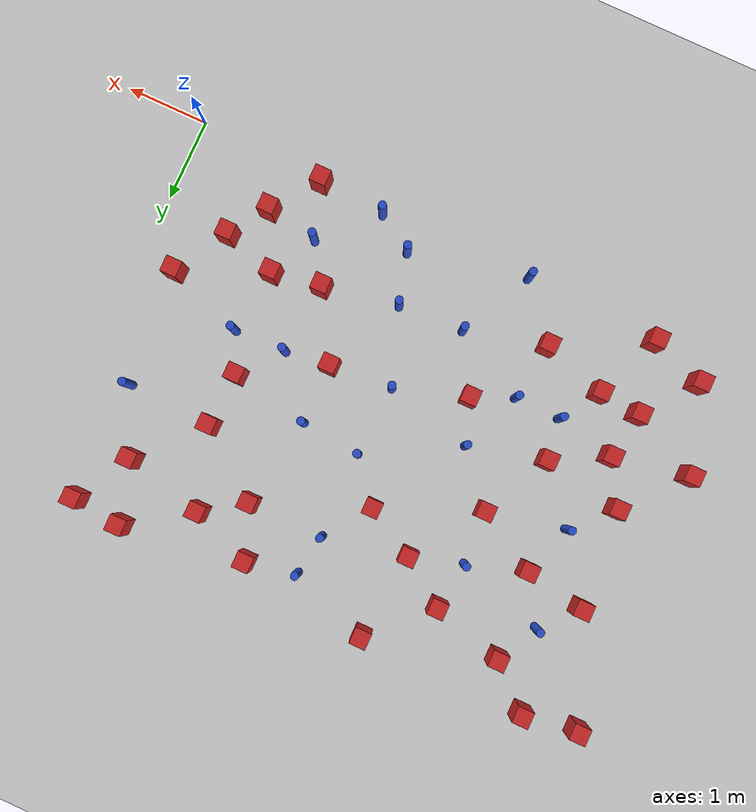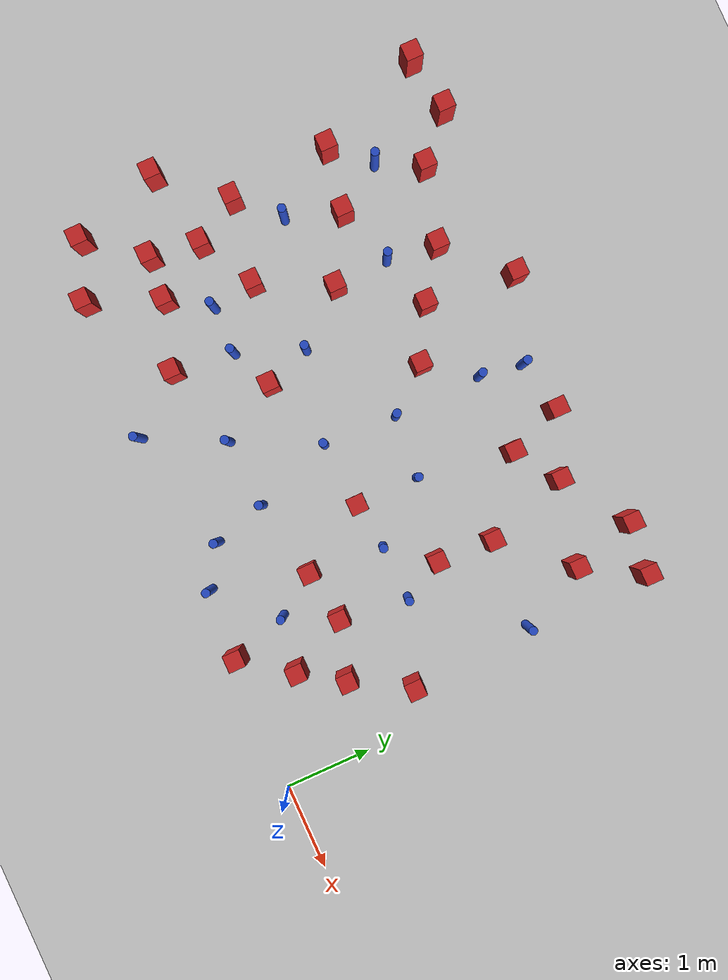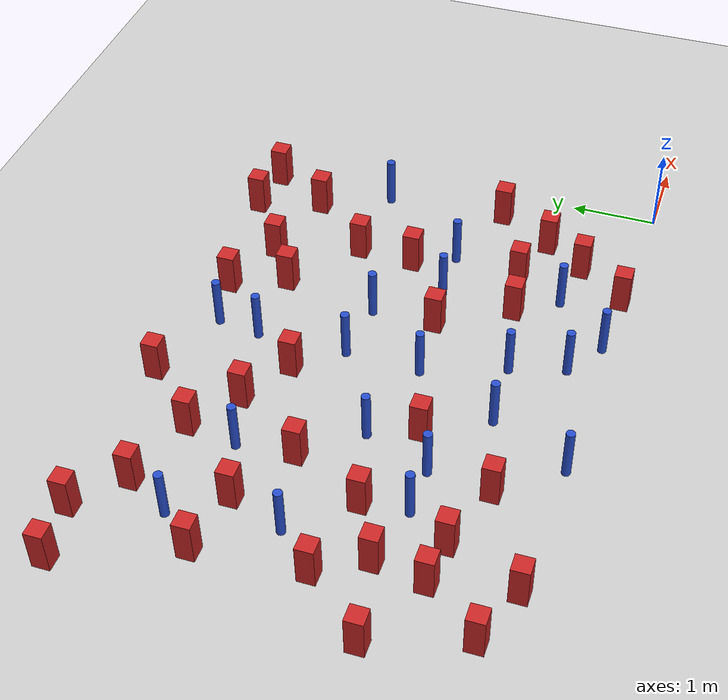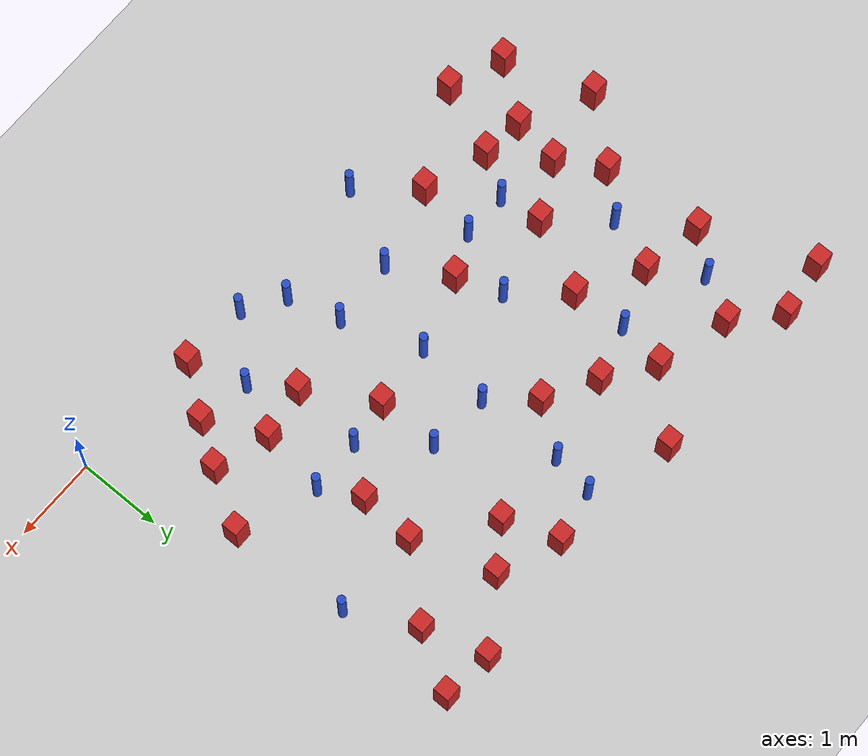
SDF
<sdf version="1.6">
 <world name="default">
  <model name="ground_plane">
   <static>1</static>
   <link name="link">
    <collision name="collision">
     <geometry><plane><normal>0 0 1</normal><size>100 100</size></plane></geometry>
     <surface><friction><ode><mu>100</mu><mu2>50</mu2></ode></friction></surface>
    </collision>
    <visual name="visual">
     <cast_shadows>0</cast_shadows>
     <geometry><plane><normal>0 0 1</normal><size>100 100</size></plane></geometry>
     <material>
      <ambient>1.0 1.0 1.0 1.0</ambient>
      <diffuse>0.8 0.8 0.8 1.0</diffuse>
      <specular>0.01 0.01 0.01 1.000000</specular>
     </material>
    </visual>
   </link>
  </model>
  <model name="pole_obstacle1">
   <static>true</static>
   <pose>-0.560717947316 3.22492922202 7.38925637345e-09 -8.47170692799e-08 1.2497676509e-08 -1.74513093016e-07</pose>
   <link name="link">
    <pose>0 0 0.3 0 -0 0</pose>
    <inertial>
     <mass>1</mass>
     <inertia><ixx>0.145833</ixx><ixy>0</ixy><ixz>0</ixz><iyy>0.145833</iyy><iyz>0</iyz><izz>0.125</izz></inertia>
    </inertial>
    <collision name="collision">
     <geometry><cylinder><radius>0.05</radius><length>.6</length></cylinder></geometry>
    </collision>
    <visual name="visual">
     <geometry><cylinder><radius>0.05</radius><length>.6</length></cylinder></geometry>
     <material>
      <script><name>Gazebo/Blue</name><uri>file://media/materials/scripts/gazebo.material</uri></script>
     </material>
    </visual>
   </link>
  </model>
  <model name="pole_obstacle2">
   <static>true</static>
   <pose>-5.3107187006 1.49005839693 7.38925637345e-09 -8.471706928e-08 1.24976765134e-08 -1.74513093015e-07</pose>
   <link name="link">
    <pose>0 0 0.3 0 -0 0</pose>
    <inertial>
     <mass>1</mass>
     <inertia><ixx>0.145833</ixx><ixy>0</ixy><ixz>0</ixz><iyy>0.145833</iyy><iyz>0</iyz><izz>0.125</izz></inertia>
    </inertial>
    <collision name="collision">
     <geometry><cylinder><radius>0.05</radius><length>.6</length></cylinder></geometry>
    </collision>
    <visual name="visual">
     <geometry><cylinder><radius>0.05</radius><length>.6</length></cylinder></geometry>
     <material>
      <script><name>Gazebo/Blue</name><uri>file://media/materials/scripts/gazebo.material</uri></script>
     </material>
    </visual>
   </link>
  </model>
  <model name="pole_obstacle6">
   <static>true</static>
   <pose>-5.92039442164 2.6374540266 7.38925637345e-09 -8.47170692798e-08 1.24976764937e-08 -1.74513093023e-07</pose>
   <link name="link">
    <pose>0 0 0.3 0 -0 0</pose>
    <inertial>
     <mass>1</mass>
     <inertia><ixx>0.145833</ixx><ixy>0</ixy><ixz>0</ixz><iyy>0.145833</iyy><iyz>0</iyz><izz>0.125</izz></inertia>
    </inertial>
    <collision name="collision">
     <geometry><cylinder><radius>0.05</radius><length>.6</length></cylinder></geometry>
    </collision>
    <visual name="visual">
     <geometry><cylinder><radius>0.05</radius><length>.6</length></cylinder></geometry>
     <material>
      <script><name>Gazebo/Blue</name><uri>file://media/materials/scripts/gazebo.material</uri></script>
     </material>
    </visual>
   </link>
  </model>
  <model name="square_post_obstacle11">
   <static>true</static>
   <pose>-2.60580880805 2.04460660842 1.91545236811e-07 -7.35059704564e-06 1.12565212e-07 2.39332434364e-05</pose>
   <link name="link">
    <pose>0 0 0.25 0 -0 0</pose>
    <inertial>
     <mass>100</mass>
     <inertia>
      <ixx>0.166667</ixx>
      <ixy>0</ixy>
      <ixz>0</ixz>
      <iyy>0.166667</iyy>
      <iyz>0</iyz>
      <izz>0.166667</izz>
     </inertia>
    </inertial>
    <collision name="collision"><geometry><box><size>.2 .2 .5</size></box></geometry></collision>
    <visual name="visual">
     <geometry><box><size>.2 .2 .5</size></box></geometry>
     <material>
      <script><name>Gazebo/Red</name><uri>file://media/materials/scripts/gazebo.material</uri></script>
     </material>
    </visual>
   </link>
  </model>
  <model name="square_post_obstacle12">
   <static>true</static>
   <pose>-0.953486799942 3.99989411962 1.91545236811e-07 -7.35059704564e-06 1.12565212e-07 2.39332434364e-05</pose>
   <link name="link">
    <pose>0 0 0.25 0 -0 0</pose>
    <inertial>
     <mass>100</mass>
     <inertia>
      <ixx>0.166667</ixx>
      <ixy>0</ixy>
      <ixz>0</ixz>
      <iyy>0.166667</iyy>
      <iyz>0</iyz>
      <izz>0.166667</izz>
     </inertia>
    </inertial>
    <collision name="collision"><geometry><box><size>.2 .2 .5</size></box></geometry></collision>
    <visual name="visual">
     <geometry><box><size>.2 .2 .5</size></box></geometry>
     <material>
      <script><name>Gazebo/Red</name><uri>file://media/materials/scripts/gazebo.material</uri></script>
     </material>
    </visual>
   </link>
  </model>
  <model name="square_post_obstacle17">
   <static>true</static>
   <pose>-3.75734223442 3.34890527654 1.91545236811e-07 -7.35059704564e-06 1.12565212e-07 2.39332434364e-05</pose>
   <link name="link">
    <pose>0 0 0.25 0 -0 0</pose>
    <inertial>
     <mass>100</mass>
     <inertia>
      <ixx>0.166667</ixx>
      <ixy>0</ixy>
      <ixz>0</ixz>
      <iyy>0.166667</iyy>
      <iyz>0</iyz>
      <izz>0.166667</izz>
     </inertia>
    </inertial>
    <collision name="collision"><geometry><box><size>.2 .2 .5</size></box></geometry></collision>
    <visual name="visual">
     <geometry><box><size>.2 .2 .5</size></box></geometry>
     <material>
      <script><name>Gazebo/Red</name><uri>file://media/materials/scripts/gazebo.material</uri></script>
     </material>
    </visual>
   </link>
  </model>
  <model name="square_post_obstacle19">
   <static>true</static>
   <pose>-1.17114769434 4.74576161731 1.91545236811e-07 -7.35059704564e-06 1.12565212e-07 2.39332434364e-05</pose>
   <link name="link">
    <pose>0 0 0.25 0 -0 0</pose>
    <inertial>
     <mass>100</mass>
     <inertia>
      <ixx>0.166667</ixx>
      <ixy>0</ixy>
      <ixz>0</ixz>
      <iyy>0.166667</iyy>
      <iyz>0</iyz>
      <izz>0.166667</izz>
     </inertia>
    </inertial>
    <collision name="collision"><geometry><box><size>.2 .2 .5</size></box></geometry></collision>
    <visual name="visual">
     <geometry><box><size>.2 .2 .5</size></box></geometry>
     <material>
      <script><name>Gazebo/Red</name><uri>file://media/materials/scripts/gazebo.material</uri></script>
     </material>
    </visual>
   </link>
  </model>
  <model name="square_post_obstacle20">
   <static>true</static>
   <pose>-2.42705209212 3.88906436774 1.91545236811e-07 -7.35059704564e-06 1.12565212e-07 2.39332434364e-05</pose>
   <link name="link">
    <pose>0 0 0.25 0 -0 0</pose>
    <inertial>
     <mass>100</mass>
     <inertia>
      <ixx>0.166667</ixx>
      <ixy>0</ixy>
      <ixz>0</ixz>
      <iyy>0.166667</iyy>
      <iyz>0</iyz>
      <izz>0.166667</izz>
     </inertia>
    </inertial>
    <collision name="collision"><geometry><box><size>.2 .2 .5</size></box></geometry></collision>
    <visual name="visual">
     <geometry><box><size>.2 .2 .5</size></box></geometry>
     <material>
      <script><name>Gazebo/Red</name><uri>file://media/materials/scripts/gazebo.material</uri></script>
     </material>
    </visual>
   </link>
  </model>
  <model name="pole_obstacle12">
   <static>true</static>
   <pose>-4.7468510527 1.48127857913 7.38925637345e-09 -8.471706928e-08 1.24976765134e-08 -1.74513093015e-07</pose>
   <link name="link">
    <pose>0 0 0.3 0 -0 0</pose>
    <inertial>
     <mass>1</mass>
     <inertia><ixx>0.145833</ixx><ixy>0</ixy><ixz>0</ixz><iyy>0.145833</iyy><iyz>0</iyz><izz>0.125</izz></inertia>
    </inertial>
    <collision name="collision">
     <geometry><cylinder><radius>0.05</radius><length>.6</length></cylinder></geometry>
    </collision>
    <visual name="visual">
     <geometry><cylinder><radius>0.05</radius><length>.6</length></cylinder></geometry>
     <material>
      <script><name>Gazebo/Blue</name><uri>file://media/materials/scripts/gazebo.material</uri></script>
     </material>
    </visual>
   </link>
  </model>
  <model name="pole_obstacle17">
   <static>true</static>
   <pose>-4.44216015125 2.24138379186 7.38925637345e-09 -8.47170692798e-08 1.24976764937e-08 -1.74513093023e-07</pose>
   <link name="link">
    <pose>0 0 0.3 0 -0 0</pose>
    <inertial>
     <mass>1</mass>
     <inertia><ixx>0.145833</ixx><ixy>0</ixy><ixz>0</ixz><iyy>0.145833</iyy><iyz>0</iyz><izz>0.125</izz></inertia>
    </inertial>
    <collision name="collision">
     <geometry><cylinder><radius>0.05</radius><length>.6</length></cylinder></geometry>
    </collision>
    <visual name="visual">
     <geometry><cylinder><radius>0.05</radius><length>.6</length></cylinder></geometry>
     <material>
      <script><name>Gazebo/Blue</name><uri>file://media/materials/scripts/gazebo.material</uri></script>
     </material>
    </visual>
   </link>
  </model>
  <model name="square_post_obstacle25">
   <static>true</static>
   <pose>-4.95838039901 2.84136335254 1.91545236811e-07 -7.35059704564e-06 1.12565212e-07 2.39332434364e-05</pose>
   <link name="link">
    <pose>0 0 0.25 0 -0 0</pose>
    <inertial>
     <mass>100</mass>
     <inertia>
      <ixx>0.166667</ixx>
      <ixy>0</ixy>
      <ixz>0</ixz>
      <iyy>0.166667</iyy>
      <iyz>0</iyz>
      <izz>0.166667</izz>
     </inertia>
    </inertial>
    <collision name="collision"><geometry><box><size>.2 .2 .5</size></box></geometry></collision>
    <visual name="visual">
     <geometry><box><size>.2 .2 .5</size></box></geometry>
     <material>
      <script><name>Gazebo/Red</name><uri>file://media/materials/scripts/gazebo.material</uri></script>
     </material>
    </visual>
   </link>
  </model>
  <model name="square_post_obstacle33">
   <static>true</static>
   <pose>-6.61525538989 0.4385133472 1.91545236811e-07 -7.35059704564e-06 1.12565212e-07 2.39332434364e-05</pose>
   <link name="link">
    <pose>0 0 0.25 0 -0 0</pose>
    <inertial>
     <mass>100</mass>
     <inertia>
      <ixx>0.166667</ixx>
      <ixy>0</ixy>
      <ixz>0</ixz>
      <iyy>0.166667</iyy>
      <iyz>0</iyz>
      <izz>0.166667</izz>
     </inertia>
    </inertial>
    <collision name="collision"><geometry><box><size>.2 .2 .5</size></box></geometry></collision>
    <visual name="visual">
     <geometry><box><size>.2 .2 .5</size></box></geometry>
     <material>
      <script><name>Gazebo/Red</name><uri>file://media/materials/scripts/gazebo.material</uri></script>
     </material>
    </visual>
   </link>
  </model>
  <model name="pole_obstacle30">
   <static>true</static>
   <pose>-3.33835124246 2.856577763 7.38925637345e-09 -8.471706928e-08 1.24976765098e-08 -1.74513093016e-07</pose>
   <link name="link">
    <pose>0 0 0.3 0 -0 0</pose>
    <inertial>
     <mass>1</mass>
     <inertia><ixx>0.145833</ixx><ixy>0</ixy><ixz>0</ixz><iyy>0.145833</iyy><iyz>0</iyz><izz>0.125</izz></inertia>
    </inertial>
    <collision name="collision">
     <geometry><cylinder><radius>0.05</radius><length>.6</length></cylinder></geometry>
    </collision>
    <visual name="visual">
     <geometry><cylinder><radius>0.05</radius><length>.6</length></cylinder></geometry>
     <material>
      <script><name>Gazebo/Blue</name><uri>file://media/materials/scripts/gazebo.material</uri></script>
     </material>
    </visual>
   </link>
  </model>
  <model name="square_post_obstacle35">
   <static>true</static>
   <pose>-2.13119340467 1.23984928694 1.91545236811e-07 -7.35059704564e-06 1.12565212e-07 2.39332434364e-05</pose>
   <link name="link">
    <pose>0 0 0.25 0 -0 0</pose>
    <inertial>
     <mass>100</mass>
     <inertia>
      <ixx>0.166667</ixx>
      <ixy>0</ixy>
      <ixz>0</ixz>
      <iyy>0.166667</iyy>
      <iyz>0</iyz>
      <izz>0.166667</izz>
     </inertia>
    </inertial>
    <collision name="collision"><geometry><box><size>.2 .2 .5</size></box></geometry></collision>
    <visual name="visual">
     <geometry><box><size>.2 .2 .5</size></box></geometry>
     <material>
      <script><name>Gazebo/Red</name><uri>file://media/materials/scripts/gazebo.material</uri></script>
     </material>
    </visual>
   </link>
  </model>
  <model name="square_post_obstacle38">
   <static>true</static>
   <pose>-1.65792401284 2.59913225852 1.91545236811e-07 -7.35059704564e-06 1.12565212e-07 2.39332434364e-05</pose>
   <link name="link">
    <pose>0 0 0.25 0 -0 0</pose>
    <inertial>
     <mass>100</mass>
     <inertia>
      <ixx>0.166667</ixx>
      <ixy>0</ixy>
      <ixz>0</ixz>
      <iyy>0.166667</iyy>
      <iyz>0</iyz>
      <izz>0.166667</izz>
     </inertia>
    </inertial>
    <collision name="collision"><geometry><box><size>.2 .2 .5</size></box></geometry></collision>
    <visual name="visual">
     <geometry><box><size>.2 .2 .5</size></box></geometry>
     <material>
      <script><name>Gazebo/Red</name><uri>file://media/materials/scripts/gazebo.material</uri></script>
     </material>
    </visual>
   </link>
  </model>
  <model name="square_post_obstacle41">
   <static>true</static>
   <pose>-6.02653967946 1.65194200317 1.91545236811e-07 -7.35059704564e-06 1.12565212e-07 2.39332434364e-05</pose>
   <link name="link">
    <pose>0 0 0.25 0 -0 0</pose>
    <inertial>
     <mass>100</mass>
     <inertia>
      <ixx>0.166667</ixx>
      <ixy>0</ixy>
      <ixz>0</ixz>
      <iyy>0.166667</iyy>
      <iyz>0</iyz>
      <izz>0.166667</izz>
     </inertia>
    </inertial>
    <collision name="collision"><geometry><box><size>.2 .2 .5</size></box></geometry></collision>
    <visual name="visual">
     <geometry><box><size>.2 .2 .5</size></box></geometry>
     <material>
      <script><name>Gazebo/Red</name><uri>file://media/materials/scripts/gazebo.material</uri></script>
     </material>
    </visual>
   </link>
  </model>
  <model name="square_post_obstacle46">
   <static>true</static>
   <pose>-6.12232445304 1.06817409139 1.91545236811e-07 -7.35059704564e-06 1.12565212e-07 2.39332434364e-05</pose>
   <link name="link">
    <pose>0 0 0.25 0 -0 0</pose>
    <inertial>
     <mass>100</mass>
     <inertia>
      <ixx>0.166667</ixx>
      <ixy>0</ixy>
      <ixz>0</ixz>
      <iyy>0.166667</iyy>
      <iyz>0</iyz>
      <izz>0.166667</izz>
     </inertia>
    </inertial>
    <collision name="collision"><geometry><box><size>.2 .2 .5</size></box></geometry></collision>
    <visual name="visual">
     <geometry><box><size>.2 .2 .5</size></box></geometry>
     <material>
      <script><name>Gazebo/Red</name><uri>file://media/materials/scripts/gazebo.material</uri></script>
     </material>
    </visual>
   </link>
  </model>
  <model name="square_post_obstacle53">
   <static>true</static>
   <pose>-4.25133898155 1.70456583758 1.91545236811e-07 -7.35059704564e-06 1.12565212e-07 2.39332434364e-05</pose>
   <link name="link">
    <pose>0 0 0.25 0 -0 0</pose>
    <inertial>
     <mass>100</mass>
     <inertia>
      <ixx>0.166667</ixx>
      <ixy>0</ixy>
      <ixz>0</ixz>
      <iyy>0.166667</iyy>
      <iyz>0</iyz>
      <izz>0.166667</izz>
     </inertia>
    </inertial>
    <collision name="collision"><geometry><box><size>.2 .2 .5</size></box></geometry></collision>
    <visual name="visual">
     <geometry><box><size>.2 .2 .5</size></box></geometry>
     <material>
      <script><name>Gazebo/Red</name><uri>file://media/materials/scripts/gazebo.material</uri></script>
     </material>
    </visual>
   </link>
  </model>
  <model name="square_post_obstacle58">
   <static>true</static>
   <pose>-1.62002600436 3.26491859349 1.91545236811e-07 -7.35059704564e-06 1.12565212e-07 2.39332434364e-05</pose>
   <link name="link">
    <pose>0 0 0.25 0 -0 0</pose>
    <inertial>
     <mass>100</mass>
     <inertia>
      <ixx>0.166667</ixx>
      <ixy>0</ixy>
      <ixz>0</ixz>
      <iyy>0.166667</iyy>
      <iyz>0</iyz>
      <izz>0.166667</izz>
     </inertia>
    </inertial>
    <collision name="collision"><geometry><box><size>.2 .2 .5</size></box></geometry></collision>
    <visual name="visual">
     <geometry><box><size>.2 .2 .5</size></box></geometry>
     <material>
      <script><name>Gazebo/Red</name><uri>file://media/materials/scripts/gazebo.material</uri></script>
     </material>
    </visual>
   </link>
  </model>
  <model name="pole_obstacle57">
   <static>true</static>
   <pose>-4.30485414501 0.119792069853 7.38925637345e-09 -8.47170692799e-08 1.24976765098e-08 -1.74513093016e-07</pose>
   <link name="link">
    <pose>0 0 0.3 0 -0 0</pose>
    <inertial>
     <mass>1</mass>
     <inertia><ixx>0.145833</ixx><ixy>0</ixy><ixz>0</ixz><iyy>0.145833</iyy><iyz>0</iyz><izz>0.125</izz></inertia>
    </inertial>
    <collision name="collision">
     <geometry><cylinder><radius>0.05</radius><length>.6</length></cylinder></geometry>
    </collision>
    <visual name="visual">
     <geometry><cylinder><radius>0.05</radius><length>.6</length></cylinder></geometry>
     <material>
      <script><name>Gazebo/Blue</name><uri>file://media/materials/scripts/gazebo.material</uri></script>
     </material>
    </visual>
   </link>
  </model>
  <model name="square_post_obstacle61">
   <static>true</static>
   <pose>-4.83421276216 0.770627071369 1.91545236811e-07 -7.35059704564e-06 1.12565212e-07 2.39332434364e-05</pose>
   <link name="link">
    <pose>0 0 0.25 0 -0 0</pose>
    <inertial>
     <mass>100</mass>
     <inertia>
      <ixx>0.166667</ixx>
      <ixy>0</ixy>
      <ixz>0</ixz>
      <iyy>0.166667</iyy>
      <iyz>0</iyz>
      <izz>0.166667</izz>
     </inertia>
    </inertial>
    <collision name="collision"><geometry><box><size>.2 .2 .5</size></box></geometry></collision>
    <visual name="visual">
     <geometry><box><size>.2 .2 .5</size></box></geometry>
     <material>
      <script><name>Gazebo/Red</name><uri>file://media/materials/scripts/gazebo.material</uri></script>
     </material>
    </visual>
   </link>
  </model>
  <model name="square_post_obstacle67">
   <static>true</static>
   <pose>-5.69200615293 3.26198052427 1.91545236811e-07 -7.35059704564e-06 1.12565212e-07 2.39332434364e-05</pose>
   <link name="link">
    <pose>0 0 0.25 0 -0 0</pose>
    <inertial>
     <mass>100</mass>
     <inertia>
      <ixx>0.166667</ixx>
      <ixy>0</ixy>
      <ixz>0</ixz>
      <iyy>0.166667</iyy>
      <iyz>0</iyz>
      <izz>0.166667</izz>
     </inertia>
    </inertial>
    <collision name="collision"><geometry><box><size>.2 .2 .5</size></box></geometry></collision>
    <visual name="visual">
     <geometry><box><size>.2 .2 .5</size></box></geometry>
     <material>
      <script><name>Gazebo/Red</name><uri>file://media/materials/scripts/gazebo.material</uri></script>
     </material>
    </visual>
   </link>
  </model>
  <model name="pole_obstacle66">
   <static>true</static>
   <pose>-3.04685775689 1.06043124986 7.38925637345e-09 -8.471706928e-08 1.24976765152e-08 -1.74513093012e-07</pose>
   <link name="link">
    <pose>0 0 0.3 0 -0 0</pose>
    <inertial>
     <mass>1</mass>
     <inertia><ixx>0.145833</ixx><ixy>0</ixy><ixz>0</ixz><iyy>0.145833</iyy><iyz>0</iyz><izz>0.125</izz></inertia>
    </inertial>
    <collision name="collision">
     <geometry><cylinder><radius>0.05</radius><length>.6</length></cylinder></geometry>
    </collision>
    <visual name="visual">
     <geometry><cylinder><radius>0.05</radius><length>.6</length></cylinder></geometry>
     <material>
      <script><name>Gazebo/Blue</name><uri>file://media/materials/scripts/gazebo.material</uri></script>
     </material>
    </visual>
   </link>
  </model>
  <model name="square_post_obstacle70">
   <static>true</static>
   <pose>-6.4316079445 3.40149915815 1.91545236811e-07 -7.35059704564e-06 1.12565212e-07 2.39332434364e-05</pose>
   <link name="link">
    <pose>0 0 0.25 0 -0 0</pose>
    <inertial>
     <mass>100</mass>
     <inertia>
      <ixx>0.166667</ixx>
      <ixy>0</ixy>
      <ixz>0</ixz>
      <iyy>0.166667</iyy>
      <iyz>0</iyz>
      <izz>0.166667</izz>
     </inertia>
    </inertial>
    <collision name="collision"><geometry><box><size>.2 .2 .5</size></box></geometry></collision>
    <visual name="visual">
     <geometry><box><size>.2 .2 .5</size></box></geometry>
     <material>
      <script><name>Gazebo/Red</name><uri>file://media/materials/scripts/gazebo.material</uri></script>
     </material>
    </visual>
   </link>
  </model>
  <model name="pole_obstacle85">
   <static>true</static>
   <pose>-3.85383028565 1.01690058531 7.38925637345e-09 -8.47170692793e-08 1.2497676438e-08 -1.74513093043e-07</pose>
   <link name="link">
    <pose>0 0 0.3 0 -0 0</pose>
    <inertial>
     <mass>1</mass>
     <inertia><ixx>0.145833</ixx><ixy>0</ixy><ixz>0</ixz><iyy>0.145833</iyy><iyz>0</iyz><izz>0.125</izz></inertia>
    </inertial>
    <collision name="collision">
     <geometry><cylinder><radius>0.05</radius><length>.6</length></cylinder></geometry>
    </collision>
    <visual name="visual">
     <geometry><cylinder><radius>0.05</radius><length>.6</length></cylinder></geometry>
     <material>
      <script><name>Gazebo/Blue</name><uri>file://media/materials/scripts/gazebo.material</uri></script>
     </material>
    </visual>
   </link>
  </model>
  <model name="pole_obstacle92">
   <static>true</static>
   <pose>-2.05316402087 2.11165233086 7.38925637345e-09 -8.47170692798e-08 1.24976764939e-08 -1.74513093025e-07</pose>
   <link name="link">
    <pose>0 0 0.3 0 -0 0</pose>
    <inertial>
     <mass>1</mass>
     <inertia><ixx>0.145833</ixx><ixy>0</ixy><ixz>0</ixz><iyy>0.145833</iyy><iyz>0</iyz><izz>0.125</izz></inertia>
    </inertial>
    <collision name="collision">
     <geometry><cylinder><radius>0.05</radius><length>.6</length></cylinder></geometry>
    </collision>
    <visual name="visual">
     <geometry><cylinder><radius>0.05</radius><length>.6</length></cylinder></geometry>
     <material>
      <script><name>Gazebo/Blue</name><uri>file://media/materials/scripts/gazebo.material</uri></script>
     </material>
    </visual>
   </link>
  </model>
  <model name="pole_obstacle93">
   <static>true</static>
   <pose>-1.80808214609 0.763237005884 7.38925637345e-09 -8.47170692799e-08 1.24976765075e-08 -1.74513093017e-07</pose>
   <link name="link">
    <pose>0 0 0.3 0 -0 0</pose>
    <inertial>
     <mass>1</mass>
     <inertia><ixx>0.145833</ixx><ixy>0</ixy><ixz>0</ixz><iyy>0.145833</iyy><iyz>0</iyz><izz>0.125</izz></inertia>
    </inertial>
    <collision name="collision">
     <geometry><cylinder><radius>0.05</radius><length>.6</length></cylinder></geometry>
    </collision>
    <visual name="visual">
     <geometry><cylinder><radius>0.05</radius><length>.6</length></cylinder></geometry>
     <material>
      <script><name>Gazebo/Blue</name><uri>file://media/materials/scripts/gazebo.material</uri></script>
     </material>
    </visual>
   </link>
  </model>
  <model name="pole_obstacle94">
   <static>true</static>
   <pose>-2.41207570671 0.141591664739 7.38925637345e-09 -8.471706928e-08 1.2497676517e-08 -1.74513093012e-07</pose>
   <link name="link">
    <pose>0 0 0.3 0 -0 0</pose>
    <inertial>
     <mass>1</mass>
     <inertia><ixx>0.145833</ixx><ixy>0</ixy><ixz>0</ixz><iyy>0.145833</iyy><iyz>0</iyz><izz>0.125</izz></inertia>
    </inertial>
    <collision name="collision">
     <geometry><cylinder><radius>0.05</radius><length>.6</length></cylinder></geometry>
    </collision>
    <visual name="visual">
     <geometry><cylinder><radius>0.05</radius><length>.6</length></cylinder></geometry>
     <material>
      <script><name>Gazebo/Blue</name><uri>file://media/materials/scripts/gazebo.material</uri></script>
     </material>
    </visual>
   </link>
  </model>
  <model name="square_post_obstacle85">
   <static>true</static>
   <pose>-0.48052606813 1.78521412935 1.91545236811e-07 -7.35059704564e-06 1.12565212e-07 2.39332434364e-05</pose>
   <link name="link">
    <pose>0 0 0.25 0 -0 0</pose>
    <inertial>
     <mass>100</mass>
     <inertia>
      <ixx>0.166667</ixx>
      <ixy>0</ixy>
      <ixz>0</ixz>
      <iyy>0.166667</iyy>
      <iyz>0</iyz>
      <izz>0.166667</izz>
     </inertia>
    </inertial>
    <collision name="collision"><geometry><box><size>.2 .2 .5</size></box></geometry></collision>
    <visual name="visual">
     <geometry><box><size>.2 .2 .5</size></box></geometry>
     <material>
      <script><name>Gazebo/Red</name><uri>file://media/materials/scripts/gazebo.material</uri></script>
     </material>
    </visual>
   </link>
  </model>
  <model name="square_post_obstacle86">
   <static>true</static>
   <pose>-2.67025493579 4.52228234512 1.91545236811e-07 -7.35059704564e-06 1.12565212e-07 2.39332434364e-05</pose>
   <link name="link">
    <pose>0 0 0.25 0 -0 0</pose>
    <inertial>
     <mass>100</mass>
     <inertia>
      <ixx>0.166667</ixx>
      <ixy>0</ixy>
      <ixz>0</ixz>
      <iyy>0.166667</iyy>
      <iyz>0</iyz>
      <izz>0.166667</izz>
     </inertia>
    </inertial>
    <collision name="collision"><geometry><box><size>.2 .2 .5</size></box></geometry></collision>
    <visual name="visual">
     <geometry><box><size>.2 .2 .5</size></box></geometry>
     <material>
      <script><name>Gazebo/Red</name><uri>file://media/materials/scripts/gazebo.material</uri></script>
     </material>
    </visual>
   </link>
  </model>
  <model name="pole_obstacle99">
   <static>true</static>
   <pose>-2.60471388288 2.78612400726 7.38925637345e-09 -8.47170692798e-08 1.24976764939e-08 -1.74513093025e-07</pose>
   <link name="link">
    <pose>0 0 0.3 0 -0 0</pose>
    <inertial>
     <mass>1</mass>
     <inertia><ixx>0.145833</ixx><ixy>0</ixy><ixz>0</ixz><iyy>0.145833</iyy><iyz>0</iyz><izz>0.125</izz></inertia>
    </inertial>
    <collision name="collision">
     <geometry><cylinder><radius>0.05</radius><length>.6</length></cylinder></geometry>
    </collision>
    <visual name="visual">
     <geometry><cylinder><radius>0.05</radius><length>.6</length></cylinder></geometry>
     <material>
      <script><name>Gazebo/Blue</name><uri>file://media/materials/scripts/gazebo.material</uri></script>
     </material>
    </visual>
   </link>
  </model>
  <model name="square_post_obstacle91">
   <static>true</static>
   <pose>-5.78439930525 4.32473814824 1.91545236811e-07 -7.35059704564e-06 1.12565212e-07 2.39332434364e-05</pose>
   <link name="link">
    <pose>0 0 0.25 0 -0 0</pose>
    <inertial>
     <mass>100</mass>
     <inertia>
      <ixx>0.166667</ixx>
      <ixy>0</ixy>
      <ixz>0</ixz>
      <iyy>0.166667</iyy>
      <iyz>0</iyz>
      <izz>0.166667</izz>
     </inertia>
    </inertial>
    <collision name="collision"><geometry><box><size>.2 .2 .5</size></box></geometry></collision>
    <visual name="visual">
     <geometry><box><size>.2 .2 .5</size></box></geometry>
     <material>
      <script><name>Gazebo/Red</name><uri>file://media/materials/scripts/gazebo.material</uri></script>
     </material>
    </visual>
   </link>
  </model>
  <model name="square_post_obstacle99">
   <static>true</static>
   <pose>-5.9533000497 0.192571677126 1.91545236811e-07 -7.35059704564e-06 1.12565212e-07 2.39332434364e-05</pose>
   <link name="link">
    <pose>0 0 0.25 0 -0 0</pose>
    <inertial>
     <mass>100</mass>
     <inertia>
      <ixx>0.166667</ixx>
      <ixy>0</ixy>
      <ixz>0</ixz>
      <iyy>0.166667</iyy>
      <iyz>0</iyz>
      <izz>0.166667</izz>
     </inertia>
    </inertial>
    <collision name="collision"><geometry><box><size>.2 .2 .5</size></box></geometry></collision>
    <visual name="visual">
     <geometry><box><size>.2 .2 .5</size></box></geometry>
     <material>
      <script><name>Gazebo/Red</name><uri>file://media/materials/scripts/gazebo.material</uri></script>
     </material>
    </visual>
   </link>
  </model>
  <model name="pole_obstacle115">
   <static>true</static>
   <pose>-5.00061995362 3.50222551562 7.38925637345e-09 -8.47170692798e-08 1.24976764937e-08 -1.74513093023e-07</pose>
   <link name="link">
    <pose>0 0 0.3 0 -0 0</pose>
    <inertial>
     <mass>1</mass>
     <inertia><ixx>0.145833</ixx><ixy>0</ixy><ixz>0</ixz><iyy>0.145833</iyy><iyz>0</iyz><izz>0.125</izz></inertia>
    </inertial>
    <collision name="collision">
     <geometry><cylinder><radius>0.05</radius><length>.6</length></cylinder></geometry>
    </collision>
    <visual name="visual">
     <geometry><cylinder><radius>0.05</radius><length>.6</length></cylinder></geometry>
     <material>
      <script><name>Gazebo/Blue</name><uri>file://media/materials/scripts/gazebo.material</uri></script>
     </material>
    </visual>
   </link>
  </model>
  <model name="pole_obstacle129">
   <static>true</static>
   <pose>-3.377908276 1.985124934 7.38925637345e-09 -8.47170692793e-08 1.24976764428e-08 -1.74513093041e-07</pose>
   <link name="link">
    <pose>0 0 0.3 0 -0 0</pose>
    <inertial>
     <mass>1</mass>
     <inertia><ixx>0.145833</ixx><ixy>0</ixy><ixz>0</ixz><iyy>0.145833</iyy><iyz>0</iyz><izz>0.125</izz></inertia>
    </inertial>
    <collision name="collision">
     <geometry><cylinder><radius>0.05</radius><length>.6</length></cylinder></geometry>
    </collision>
    <visual name="visual">
     <geometry><cylinder><radius>0.05</radius><length>.6</length></cylinder></geometry>
     <material>
      <script><name>Gazebo/Blue</name><uri>file://media/materials/scripts/gazebo.material</uri></script>
     </material>
    </visual>
   </link>
  </model>
  <model name="square_post_obstacle119">
   <static>true</static>
   <pose>-1.59816661595 0.0983796874942 1.91545236811e-07 -7.35059704564e-06 1.12565212e-07 2.39332434364e-05</pose>
   <link name="link">
    <pose>0 0 0.25 0 -0 0</pose>
    <inertial>
     <mass>100</mass>
     <inertia>
      <ixx>0.166667</ixx>
      <ixy>0</ixy>
      <ixz>0</ixz>
      <iyy>0.166667</iyy>
      <iyz>0</iyz>
      <izz>0.166667</izz>
     </inertia>
    </inertial>
    <collision name="collision"><geometry><box><size>.2 .2 .5</size></box></geometry></collision>
    <visual name="visual">
     <geometry><box><size>.2 .2 .5</size></box></geometry>
     <material>
      <script><name>Gazebo/Red</name><uri>file://media/materials/scripts/gazebo.material</uri></script>
     </material>
    </visual>
   </link>
  </model>
  <model name="square_post_obstacle125">
   <static>true</static>
   <pose>-4.91396663422 4.0793611735 1.91545236811e-07 -7.35059704564e-06 1.12565212e-07 2.39332434364e-05</pose>
   <link name="link">
    <pose>0 0 0.25 0 -0 0</pose>
    <inertial>
     <mass>100</mass>
     <inertia>
      <ixx>0.166667</ixx>
      <ixy>0</ixy>
      <ixz>0</ixz>
      <iyy>0.166667</iyy>
      <iyz>0</iyz>
      <izz>0.166667</izz>
     </inertia>
    </inertial>
    <collision name="collision"><geometry><box><size>.2 .2 .5</size></box></geometry></collision>
    <visual name="visual">
     <geometry><box><size>.2 .2 .5</size></box></geometry>
     <material>
      <script><name>Gazebo/Red</name><uri>file://media/materials/scripts/gazebo.material</uri></script>
     </material>
    </visual>
   </link>
  </model>
  <model name="square_post_obstacle129">
   <static>true</static>
   <pose>-1.93059639698 4.23081095013 1.91545236811e-07 -7.35059704564e-06 1.12565212e-07 2.39332434364e-05</pose>
   <link name="link">
    <pose>0 0 0.25 0 -0 0</pose>
    <inertial>
     <mass>100</mass>
     <inertia>
      <ixx>0.166667</ixx>
      <ixy>0</ixy>
      <ixz>0</ixz>
      <iyy>0.166667</iyy>
      <iyz>0</iyz>
      <izz>0.166667</izz>
     </inertia>
    </inertial>
    <collision name="collision"><geometry><box><size>.2 .2 .5</size></box></geometry></collision>
    <visual name="visual">
     <geometry><box><size>.2 .2 .5</size></box></geometry>
     <material>
      <script><name>Gazebo/Red</name><uri>file://media/materials/scripts/gazebo.material</uri></script>
     </material>
    </visual>
   </link>
  </model>
  <model name="square_post_obstacle130">
   <static>true</static>
   <pose>-5.6103822212 1.01912202545 1.91545236811e-07 -7.35059704564e-06 1.12565212e-07 2.39332434364e-05</pose>
   <link name="link">
    <pose>0 0 0.25 0 -0 0</pose>
    <inertial>
     <mass>100</mass>
     <inertia>
      <ixx>0.166667</ixx>
      <ixy>0</ixy>
      <ixz>0</ixz>
      <iyy>0.166667</iyy>
      <iyz>0</iyz>
      <izz>0.166667</izz>
     </inertia>
    </inertial>
    <collision name="collision"><geometry><box><size>.2 .2 .5</size></box></geometry></collision>
    <visual name="visual">
     <geometry><box><size>.2 .2 .5</size></box></geometry>
     <material>
      <script><name>Gazebo/Red</name><uri>file://media/materials/scripts/gazebo.material</uri></script>
     </material>
    </visual>
   </link>
  </model>
  <model name="square_post_obstacle133">
   <static>true</static>
   <pose>-1.5246314995 1.33497562258 1.91545236811e-07 -7.35059704564e-06 1.12565212e-07 2.39332434364e-05</pose>
   <link name="link">
    <pose>0 0 0.25 0 -0 0</pose>
    <inertial>
     <mass>100</mass>
     <inertia>
      <ixx>0.166667</ixx>
      <ixy>0</ixy>
      <ixz>0</ixz>
      <iyy>0.166667</iyy>
      <iyz>0</iyz>
      <izz>0.166667</izz>
     </inertia>
    </inertial>
    <collision name="collision"><geometry><box><size>.2 .2 .5</size></box></geometry></collision>
    <visual name="visual">
     <geometry><box><size>.2 .2 .5</size></box></geometry>
     <material>
      <script><name>Gazebo/Red</name><uri>file://media/materials/scripts/gazebo.material</uri></script>
     </material>
    </visual>
   </link>
  </model>
  <model name="square_post_obstacle139">
   <static>true</static>
   <pose>-0.865482459817 1.13167618494 1.91545236811e-07 -7.35059704564e-06 1.12565212e-07 2.39332434364e-05</pose>
   <link name="link">
    <pose>0 0 0.25 0 -0 0</pose>
    <inertial>
     <mass>100</mass>
     <inertia>
      <ixx>0.166667</ixx>
      <ixy>0</ixy>
      <ixz>0</ixz>
      <iyy>0.166667</iyy>
      <iyz>0</iyz>
      <izz>0.166667</izz>
     </inertia>
    </inertial>
    <collision name="collision"><geometry><box><size>.2 .2 .5</size></box></geometry></collision>
    <visual name="visual">
     <geometry><box><size>.2 .2 .5</size></box></geometry>
     <material>
      <script><name>Gazebo/Red</name><uri>file://media/materials/scripts/gazebo.material</uri></script>
     </material>
    </visual>
   </link>
  </model>
  <model name="pole_obstacle151">
   <static>true</static>
   <pose>-1.41146686514 2.12948897662 7.38925637345e-09 -8.47170692799e-08 1.24976765053e-08 -1.74513093017e-07</pose>
   <link name="link">
    <pose>0 0 0.3 0 -0 0</pose>
    <inertial>
     <mass>1</mass>
     <inertia><ixx>0.145833</ixx><ixy>0</ixy><ixz>0</ixz><iyy>0.145833</iyy><iyz>0</iyz><izz>0.125</izz></inertia>
    </inertial>
    <collision name="collision">
     <geometry><cylinder><radius>0.05</radius><length>.6</length></cylinder></geometry>
    </collision>
    <visual name="visual">
     <geometry><cylinder><radius>0.05</radius><length>.6</length></cylinder></geometry>
     <material>
      <script><name>Gazebo/Blue</name><uri>file://media/materials/scripts/gazebo.material</uri></script>
     </material>
    </visual>
   </link>
  </model>
  <model name="square_post_obstacle148">
   <static>true</static>
   <pose>-4.249597601 4.74541655601 1.91545236811e-07 -7.35059704564e-06 1.12565212e-07 2.39332434364e-05</pose>
   <link name="link">
    <pose>0 0 0.25 0 -0 0</pose>
    <inertial>
     <mass>100</mass>
     <inertia>
      <ixx>0.166667</ixx>
      <ixy>0</ixy>
      <ixz>0</ixz>
      <iyy>0.166667</iyy>
      <iyz>0</iyz>
      <izz>0.166667</izz>
     </inertia>
    </inertial>
    <collision name="collision"><geometry><box><size>.2 .2 .5</size></box></geometry></collision>
    <visual name="visual">
     <geometry><box><size>.2 .2 .5</size></box></geometry>
     <material>
      <script><name>Gazebo/Red</name><uri>file://media/materials/scripts/gazebo.material</uri></script>
     </material>
    </visual>
   </link>
  </model>
  <model name="pole_obstacle168">
   <static>true</static>
   <pose>-2.86940529132 0.438156047305 7.38925637345e-09 -8.471706928e-08 1.24976765172e-08 -1.74513093013e-07</pose>
   <link name="link">
    <pose>0 0 0.3 0 -0 0</pose>
    <inertial>
     <mass>1</mass>
     <inertia><ixx>0.145833</ixx><ixy>0</ixy><ixz>0</ixz><iyy>0.145833</iyy><iyz>0</iyz><izz>0.125</izz></inertia>
    </inertial>
    <collision name="collision">
     <geometry><cylinder><radius>0.05</radius><length>.6</length></cylinder></geometry>
    </collision>
    <visual name="visual">
     <geometry><cylinder><radius>0.05</radius><length>.6</length></cylinder></geometry>
     <material>
      <script><name>Gazebo/Blue</name><uri>file://media/materials/scripts/gazebo.material</uri></script>
     </material>
    </visual>
   </link>
  </model>
  <model name="square_post_obstacle162">
   <static>true</static>
   <pose>-0.567082523954 4.6795367125 1.91545236811e-07 -7.35059704564e-06 1.12565212e-07 2.39332434364e-05</pose>
   <link name="link">
    <pose>0 0 0.25 0 -0 0</pose>
    <inertial>
     <mass>100</mass>
     <inertia>
      <ixx>0.166667</ixx>
      <ixy>0</ixy>
      <ixz>0</ixz>
      <iyy>0.166667</iyy>
      <iyz>0</iyz>
      <izz>0.166667</izz>
     </inertia>
    </inertial>
    <collision name="collision"><geometry><box><size>.2 .2 .5</size></box></geometry></collision>
    <visual name="visual">
     <geometry><box><size>.2 .2 .5</size></box></geometry>
     <material>
      <script><name>Gazebo/Red</name><uri>file://media/materials/scripts/gazebo.material</uri></script>
     </material>
    </visual>
   </link>
  </model>
  <model name="square_post_obstacle165">
   <static>true</static>
   <pose>-5.37181966254 2.0014822256 1.91545236811e-07 -7.35059704564e-06 1.12565212e-07 2.39332434364e-05</pose>
   <link name="link">
    <pose>0 0 0.25 0 -0 0</pose>
    <inertial>
     <mass>100</mass>
     <inertia>
      <ixx>0.166667</ixx>
      <ixy>0</ixy>
      <ixz>0</ixz>
      <iyy>0.166667</iyy>
      <iyz>0</iyz>
      <izz>0.166667</izz>
     </inertia>
    </inertial>
    <collision name="collision"><geometry><box><size>.2 .2 .5</size></box></geometry></collision>
    <visual name="visual">
     <geometry><box><size>.2 .2 .5</size></box></geometry>
     <material>
      <script><name>Gazebo/Red</name><uri>file://media/materials/scripts/gazebo.material</uri></script>
     </material>
    </visual>
   </link>
  </model>
  <model name="pole_obstacle185">
   <static>true</static>
   <pose>-3.27932704842 4.40597217336 7.38925637345e-09 -8.47170692798e-08 1.24976765033e-08 -1.74513093019e-07</pose>
   <link name="link">
    <pose>0 0 0.3 0 -0 0</pose>
    <inertial>
     <mass>1</mass>
     <inertia><ixx>0.145833</ixx><ixy>0</ixy><ixz>0</ixz><iyy>0.145833</iyy><iyz>0</iyz><izz>0.125</izz></inertia>
    </inertial>
    <collision name="collision">
     <geometry><cylinder><radius>0.05</radius><length>.6</length></cylinder></geometry>
    </collision>
    <visual name="visual">
     <geometry><cylinder><radius>0.05</radius><length>.6</length></cylinder></geometry>
     <material>
      <script><name>Gazebo/Blue</name><uri>file://media/materials/scripts/gazebo.material</uri></script>
     </material>
    </visual>
   </link>
  </model>
  <model name="square_post_obstacle175">
   <static>true</static>
   <pose>-1.18245739551 0.656260622309 1.91545236811e-07 -7.35059704564e-06 1.12565212e-07 2.39332434364e-05</pose>
   <link name="link">
    <pose>0 0 0.25 0 -0 0</pose>
    <inertial>
     <mass>100</mass>
     <inertia>
      <ixx>0.166667</ixx>
      <ixy>0</ixy>
      <ixz>0</ixz>
      <iyy>0.166667</iyy>
      <iyz>0</iyz>
      <izz>0.166667</izz>
     </inertia>
    </inertial>
    <collision name="collision"><geometry><box><size>.2 .2 .5</size></box></geometry></collision>
    <visual name="visual">
     <geometry><box><size>.2 .2 .5</size></box></geometry>
     <material>
      <script><name>Gazebo/Red</name><uri>file://media/materials/scripts/gazebo.material</uri></script>
     </material>
    </visual>
   </link>
  </model>
  <model name="square_post_obstacle178">
   <static>true</static>
   <pose>-6.95801368799 1.47882854783 1.91545236811e-07 -7.35059704564e-06 1.12565212e-07 2.39332434364e-05</pose>
   <link name="link">
    <pose>0 0 0.25 0 -0 0</pose>
    <inertial>
     <mass>100</mass>
     <inertia>
      <ixx>0.166667</ixx>
      <ixy>0</ixy>
      <ixz>0</ixz>
      <iyy>0.166667</iyy>
      <iyz>0</iyz>
      <izz>0.166667</izz>
     </inertia>
    </inertial>
    <collision name="collision"><geometry><box><size>.2 .2 .5</size></box></geometry></collision>
    <visual name="visual">
     <geometry><box><size>.2 .2 .5</size></box></geometry>
     <material>
      <script><name>Gazebo/Red</name><uri>file://media/materials/scripts/gazebo.material</uri></script>
     </material>
    </visual>
   </link>
  </model>
  <model name="square_post_obstacle180">
   <static>true</static>
   <pose>-6.29163561929 4.78245939815 1.91545236811e-07 -7.35059704564e-06 1.12565212e-07 2.39332434364e-05</pose>
   <link name="link">
    <pose>0 0 0.25 0 -0 0</pose>
    <inertial>
     <mass>100</mass>
     <inertia>
      <ixx>0.166667</ixx>
      <ixy>0</ixy>
      <ixz>0</ixz>
      <iyy>0.166667</iyy>
      <iyz>0</iyz>
      <izz>0.166667</izz>
     </inertia>
    </inertial>
    <collision name="collision"><geometry><box><size>.2 .2 .5</size></box></geometry></collision>
    <visual name="visual">
     <geometry><box><size>.2 .2 .5</size></box></geometry>
     <material>
      <script><name>Gazebo/Red</name><uri>file://media/materials/scripts/gazebo.material</uri></script>
     </material>
    </visual>
   </link>
  </model>
  <model name="square_post_obstacle183">
   <static>true</static>
   <pose>-4.36293978918 3.68592148065 1.91545236811e-07 -7.35059704564e-06 1.12565212e-07 2.39332434364e-05</pose>
   <link name="link">
    <pose>0 0 0.25 0 -0 0</pose>
    <inertial>
     <mass>100</mass>
     <inertia>
      <ixx>0.166667</ixx>
      <ixy>0</ixy>
      <ixz>0</ixz>
      <iyy>0.166667</iyy>
      <iyz>0</iyz>
      <izz>0.166667</izz>
     </inertia>
    </inertial>
    <collision name="collision"><geometry><box><size>.2 .2 .5</size></box></geometry></collision>
    <visual name="visual">
     <geometry><box><size>.2 .2 .5</size></box></geometry>
     <material>
      <script><name>Gazebo/Red</name><uri>file://media/materials/scripts/gazebo.material</uri></script>
     </material>
    </visual>
   </link>
  </model>
  <model name="square_post_obstacle195">
   <static>true</static>
   <pose>-6.34109403858 2.18420370664 1.91545236811e-07 -7.35059704564e-06 1.12565212e-07 2.39332434364e-05</pose>
   <link name="link">
    <pose>0 0 0.25 0 -0 0</pose>
    <inertial>
     <mass>100</mass>
     <inertia>
      <ixx>0.166667</ixx>
      <ixy>0</ixy>
      <ixz>0</ixz>
      <iyy>0.166667</iyy>
      <iyz>0</iyz>
      <izz>0.166667</izz>
     </inertia>
    </inertial>
    <collision name="collision"><geometry><box><size>.2 .2 .5</size></box></geometry></collision>
    <visual name="visual">
     <geometry><box><size>.2 .2 .5</size></box></geometry>
     <material>
      <script><name>Gazebo/Red</name><uri>file://media/materials/scripts/gazebo.material</uri></script>
     </material>
    </visual>
   </link>
  </model>
  <model name="pole_obstacle196">
   <static>true</static>
   <pose>-6.06319742615 3.83088067186 7.38925637345e-09 -8.47170692798e-08 1.24976764937e-08 -1.74513093023e-07</pose>
   <link name="link">
    <pose>0 0 0.3 0 -0 0</pose>
    <inertial>
     <mass>1</mass>
     <inertia><ixx>0.145833</ixx><ixy>0</ixy><ixz>0</ixz><iyy>0.145833</iyy><iyz>0</iyz><izz>0.125</izz></inertia>
    </inertial>
    <collision name="collision">
     <geometry><cylinder><radius>0.05</radius><length>.6</length></cylinder></geometry>
    </collision>
    <visual name="visual">
     <geometry><cylinder><radius>0.05</radius><length>.6</length></cylinder></geometry>
     <material>
      <script><name>Gazebo/Blue</name><uri>file://media/materials/scripts/gazebo.material</uri></script>
     </material>
    </visual>
   </link>
  </model>
  <model name="pole_obstacle200">
   <static>true</static>
   <pose>-3.35776301071 3.90121457309 7.38925637345e-09 -8.47170692798e-08 1.24976764939e-08 -1.74513093025e-07</pose>
   <link name="link">
    <pose>0 0 0.3 0 -0 0</pose>
    <inertial>
     <mass>1</mass>
     <inertia><ixx>0.145833</ixx><ixy>0</ixy><ixz>0</ixz><iyy>0.145833</iyy><iyz>0</iyz><izz>0.125</izz></inertia>
    </inertial>
    <collision name="collision">
     <geometry><cylinder><radius>0.05</radius><length>.6</length></cylinder></geometry>
    </collision>
    <visual name="visual">
     <geometry><cylinder><radius>0.05</radius><length>.6</length></cylinder></geometry>
     <material>
      <script><name>Gazebo/Blue</name><uri>file://media/materials/scripts/gazebo.material</uri></script>
     </material>
    </visual>
   </link>
  </model>
  <model name="square_post_obstacle209">
   <static>true</static>
   <pose>-6.95650578433 4.68882029787 1.91545236811e-07 -7.35059704564e-06 1.12565212e-07 2.39332434364e-05</pose>
   <link name="link">
    <pose>0 0 0.25 0 -0 0</pose>
    <inertial>
     <mass>100</mass>
     <inertia>
      <ixx>0.166667</ixx>
      <ixy>0</ixy>
      <ixz>0</ixz>
      <iyy>0.166667</iyy>
      <iyz>0</iyz>
      <izz>0.166667</izz>
     </inertia>
    </inertial>
    <collision name="collision"><geometry><box><size>.2 .2 .5</size></box></geometry></collision>
    <visual name="visual">
     <geometry><box><size>.2 .2 .5</size></box></geometry>
     <material>
      <script><name>Gazebo/Red</name><uri>file://media/materials/scripts/gazebo.material</uri></script>
     </material>
    </visual>
   </link>
  </model>
 </world>
</sdf>
